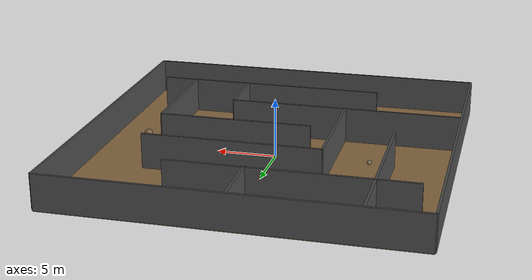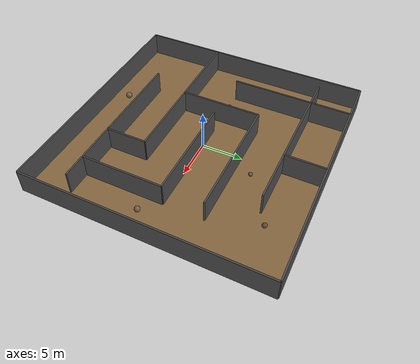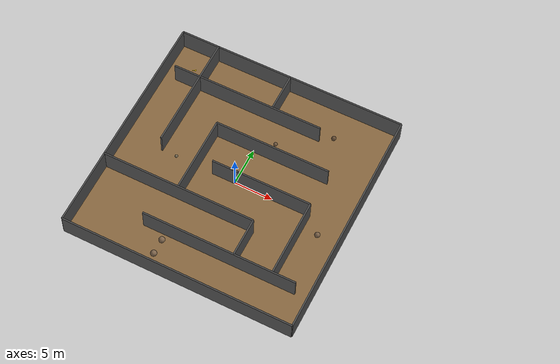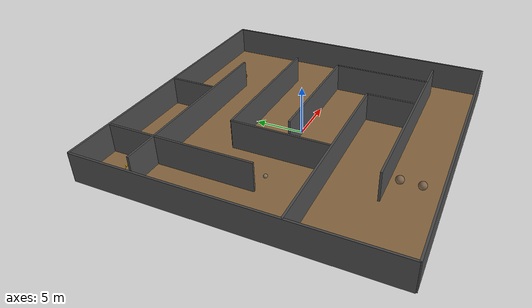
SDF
<?xml version="1.0" ?>
<sdf version="1.9">
  <world name="mina_labirinto_com_solucao">

    <scene>
      <ambient>0.1 0.1 0.1 1.0</ambient>
      <background>0.15 0.15 0.15 1.0</background>
      <shadows>true</shadows>
    </scene>

    <light type="directional" name="luz_fraca_mina">
      <cast_shadows>true</cast_shadows>
      <pose>0 0 20 0 0 0</pose>
      <diffuse>0.5 0.5 0.5 1</diffuse>
      <specular>0.1 0.1 0.1 1</specular>
      <direction>0.1 0.1 -1</direction>
    </light>

    <model name="chao_da_mina">
      <static>true</static>
      <pose>0 0 -0.05 0 0 0</pose>
      <link name="link">
        <collision name="collision">
          <geometry><box><size>30 30 0.1</size></box></geometry>
        </collision>
        <visual name="visual">
          <geometry><box><size>30 30 0.1</size></box></geometry>
          <material><diffuse>0.55 0.42 0.26 1.0</diffuse></material>
        </visual>
      </link>
    </model>

    <model name='recompensa_final'>
      <pose>-12 12 0.3 0 0 0.5</pose>
      <static>false</static>

      <link name='lamina'>
        <visual name='visual_lamina'>
          <geometry>
            <box><size>0.4 0.05 0.05</size></box>
          </geometry>
          <material>
            <ambient>1.0 0.84 0 1</ambient>
            <diffuse>1.0 0.84 0 1</diffuse>
          </material>
        </visual>
        <collision name='collision_lamina'>
           <geometry>
            <box><size>0.4 0.05 0.05</size></box>
          </geometry>
        </collision>
      </link>

      <link name='cabo'>
        <pose>0.25 0 0 0 0 0</pose>
        <visual name='visual_cabo'>
          <geometry>
            <box><size>0.1 0.2 0.05</size></box>
          </geometry>
          <material>
            <ambient>1.0 0.84 0 1</ambient>
            <diffuse>1.0 0.84 0 1</diffuse>
          </material>
        </visual>
        <collision name='collision_cabo'>
          <geometry>
            <box><size>0.1 0.2 0.05</size></box>
          </geometry>
        </collision>
      </link>

      <joint name='lamina_cabo_joint' type='fixed'>
        <parent>lamina</parent>
        <child>cabo</child>
      </joint>
    </model>

    <model name="pedra_02"><static>true</static><pose>-4 -11 0.4 0 0 0</pose><link name="link"><collision name="collision"><geometry><sphere><radius>0.4</radius></sphere></geometry></collision><visual name="visual"><geometry><sphere><radius>0.4</radius></sphere></geometry><material><diffuse>0.5 0.4 0.3 1</diffuse></material></visual></link></model>
    <model name="pedra_02_01"><static>true</static><pose>-4 -13 0.4 0 0 0</pose><link name="link"><collision name="collision"><geometry><sphere><radius>0.4</radius></sphere></geometry></collision><visual name="visual"><geometry><sphere><radius>0.4</radius></sphere></geometry><material><diffuse>0.5 0.4 0.3 1</diffuse></material></visual></link></model>
    <model name="pedra_03"><static>true</static><pose>2 7 0.25 0 0 0.2</pose><link name="link"><collision name="collision"><geometry><sphere><radius>0.25</radius></sphere></geometry></collision><visual name="visual"><geometry><sphere><radius>0.25</radius></sphere></geometry><material><diffuse>0.45 0.35 0.25 1</diffuse></material></visual></link></model>
    <model name="pedra_04"><static>true</static><pose>12 -2 0.35 0 0 0</pose><link name="link"><collision name="collision"><geometry><sphere><radius>0.35</radius></sphere></geometry></collision><visual name="visual"><geometry><sphere><radius>0.35</radius></sphere></geometry><material><diffuse>0.48 0.38 0.28 1</diffuse></material></visual></link></model>
    <model name="pedra_05"><static>true</static><pose>8 11 0.3 0 0 0</pose><link name="link"><collision name="collision"><geometry><sphere><radius>0.3</radius></sphere></geometry></collision><visual name="visual"><geometry><sphere><radius>0.3</radius></sphere></geometry><material><diffuse>0.4 0.3 0.2 1</diffuse></material></visual></link></model>
    <model name="pedra_06"><static>true</static><pose>-8 0 0.2 0 0 0</pose><link name="link"><collision name="collision"><geometry><sphere><radius>0.2</radius></sphere></geometry></collision><visual name="visual"><geometry><sphere><radius>0.2</radius></sphere></geometry><material><diffuse>0.5 0.45 0.35 1</diffuse></material></visual></link></model>

    <model name='parede_norte'><static>true</static><pose>0 15 1.5 0 0 0</pose><link name='link'><collision name='collision'><geometry><box><size>30 0.2 3</size></box></geometry></collision><visual name='visual'><geometry><box><size>30 0.2 3</size></box></geometry><material><diffuse>0.3 0.3 0.3 1</diffuse></material></visual></link></model>
    <model name='parede_sul'><static>true</static><pose>0 -15 1.5 0 0 0</pose><link name='link'><collision name='collision'><geometry><box><size>30 0.2 3</size></box></geometry></collision><visual name='visual'><geometry><box><size>30 0.2 3</size></box></geometry><material><diffuse>0.3 0.3 0.3 1</diffuse></material></visual></link></model>
    <model name='parede_leste'><static>true</static><pose>15 0 1.5 0 0 0</pose><link name='link'><collision name='collision'><geometry><box><size>0.2 30 3</size></box></geometry></collision><visual name='visual'><geometry><box><size>0.2 30 3</size></box></geometry><material><diffuse>0.3 0.3 0.3 1</diffuse></material></visual></link></model>
    <model name='parede_oeste'><static>true</static><pose>-15 0 1.5 0 0 0</pose><link name='link'><collision name='collision'><geometry><box><size>0.2 30 3</size></box></geometry></collision><visual name='visual'><geometry><box><size>0.2 30 3</size></box></geometry><material><diffuse>0.3 0.3 0.3 1</diffuse></material></visual></link></model>

    <model name='ph_1'><static>true</static><pose>-3.5 10 1.5 0 0 0</pose><link name='link'><collision name='collision'><geometry><box><size>20 0.2 3</size></box></geometry></collision><visual name='visual'><geometry><box><size>20 0.2 3</size></box></geometry><material><diffuse>0.3 0.3 0.3 1</diffuse></material></visual></link></model>
    <model name='ph_2'><static>true</static><pose>2.5 5 1.5 0 0 0</pose><link name='link'><collision name='collision'><geometry><box><size>15 0.2 3</size></box></geometry></collision><visual name='visual'><geometry><box><size>15 0.2 3</size></box></geometry><material><diffuse>0.3 0.3 0.3 1</diffuse></material></visual></link></model>
    <model name='ph_3'><static>true</static><pose>3.5 0 1.5 0 0 0</pose><link name='link'><collision name='collision'><geometry><box><size>13 0.2 3</size></box></geometry></collision><visual name='visual'><geometry><box><size>13 0.2 3</size></box></geometry><material><diffuse>0.3 0.3 0.3 1</diffuse></material></visual></link></model>
    <model name='ph_4'><static>true</static><pose>-5 -5 1.5 0 0 0</pose><link name='link'><collision name='collision'><geometry><box><size>20 0.2 3</size></box></geometry></collision><visual name='visual'><geometry><box><size>20 0.2 3</size></box></geometry><material><diffuse>0.3 0.3 0.3 1</diffuse></material></visual></link></model>
    <model name='ph_5'><static>true</static><pose>3 -10 1.5 0 0 0</pose><link name='link'><collision name='collision'><geometry><box><size>20 0.2 3</size></box></geometry></collision><visual name='visual'><geometry><box><size>20 0.2 3</size></box></geometry><material><diffuse>0.3 0.3 0.3 1</diffuse></material></visual></link></model>

    <model name='pv_1'><static>true</static><pose>-10 7.5 1.5 0 0 0</pose><link name='link'><collision name='collision'><geometry><box><size>0.2 15 3</size></box></geometry></collision><visual name='visual'><geometry><box><size>0.2 15 3</size></box></geometry><material><diffuse>0.3 0.3 0.3 1</diffuse></material></visual></link></model>
    <model name='pv_2'><static>true</static><pose>-5 0 1.5 0 0 0</pose><link name='link'><collision name='collision'><geometry><box><size>0.2 10 3</size></box></geometry></collision><visual name='visual'><geometry><box><size>0.2 10 3</size></box></geometry><material><diffuse>0.3 0.3 0.3 1</diffuse></material></visual></link></model>
    <model name='pv_3'><static>true</static><pose>0 12.5 1.5 0 0 0</pose><link name='link'><collision name='collision'><geometry><box><size>0.2 5 3</size></box></geometry></collision><visual name='visual'><geometry><box><size>0.2 5 3</size></box></geometry><material><diffuse>0.3 0.3 0.3 1</diffuse></material></visual></link></model>
    <model name='pv_4'><static>true</static><pose>5 -7.5 1.5 0 0 0</pose><link name='link'><collision name='collision'><geometry><box><size>0.2 5 3</size></box></geometry></collision><visual name='visual'><geometry><box><size>0.2 5 3</size></box></geometry><material><diffuse>0.3 0.3 0.3 1</diffuse></material></visual></link></model>
    <model name='pv_5'><static>true</static><pose>10 -5.0 1.5 0 0 0</pose><link name='link'><collision name='collision'><geometry><box><size>0.2 15 3</size></box></geometry></collision><visual name='visual'><geometry><box><size>0.2 10 3</size></box></geometry><material><diffuse>0.3 0.3 0.3 1</diffuse></material></visual></link></model>

  </world>
</sdf>
